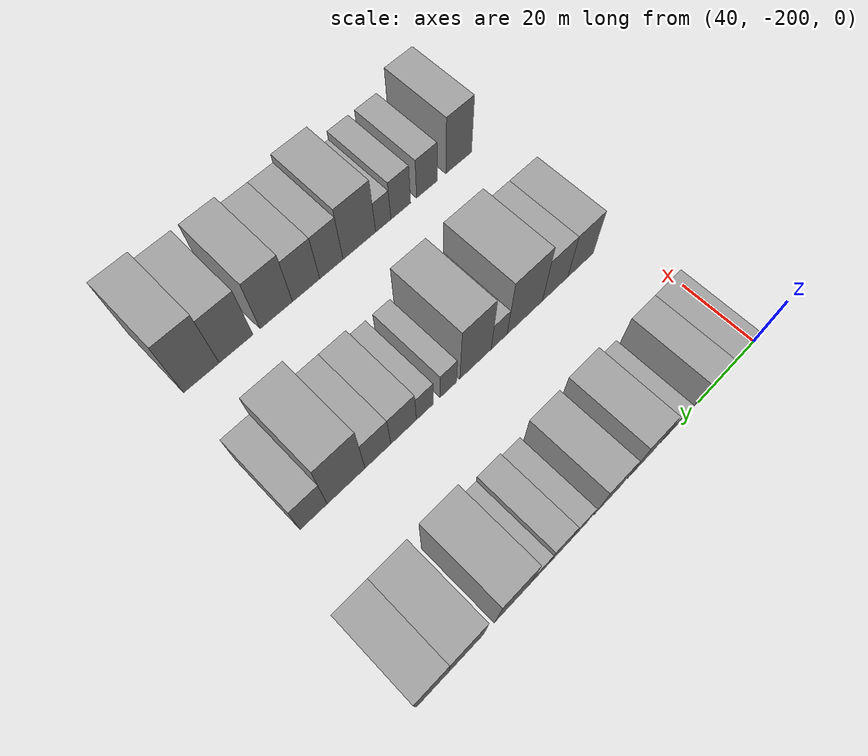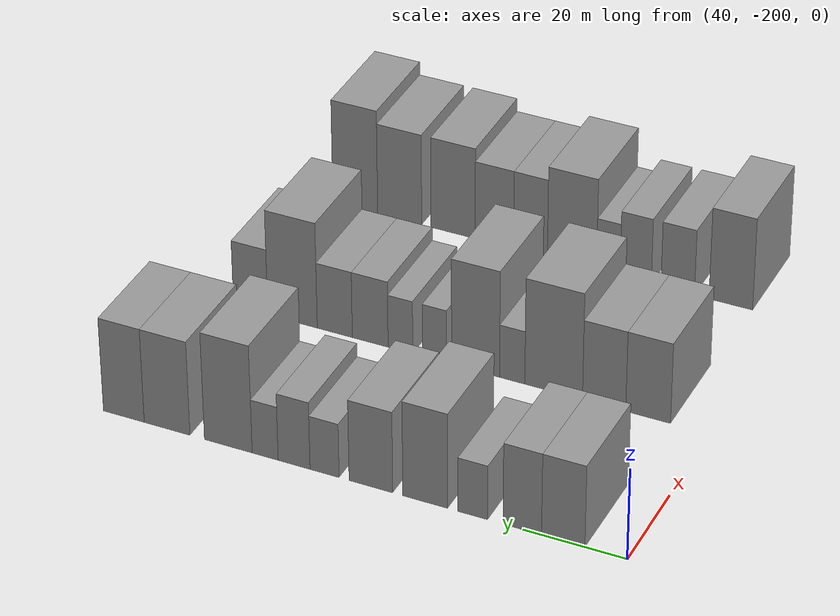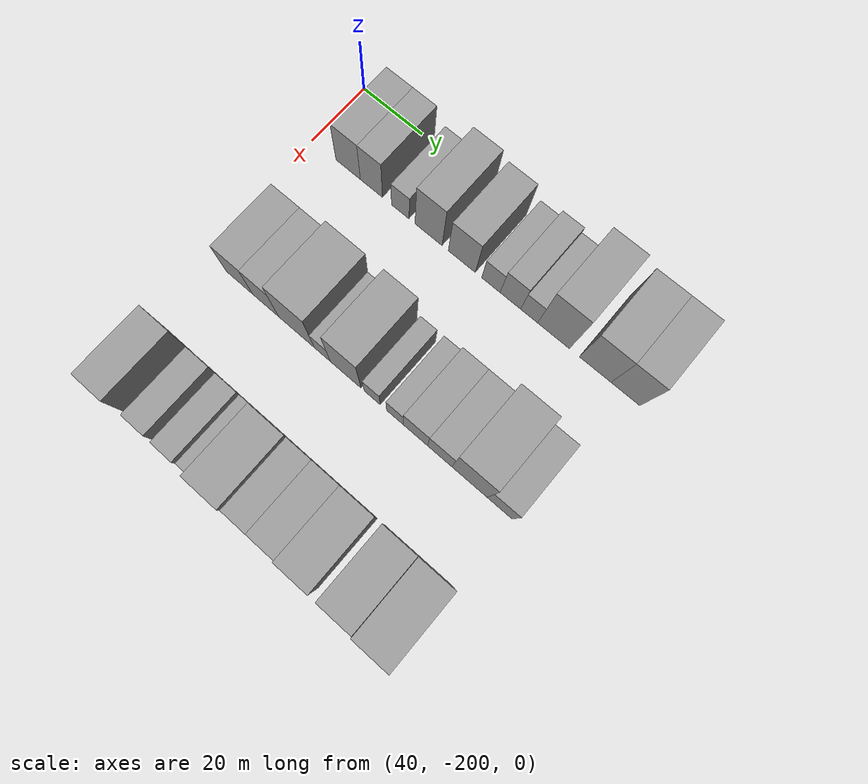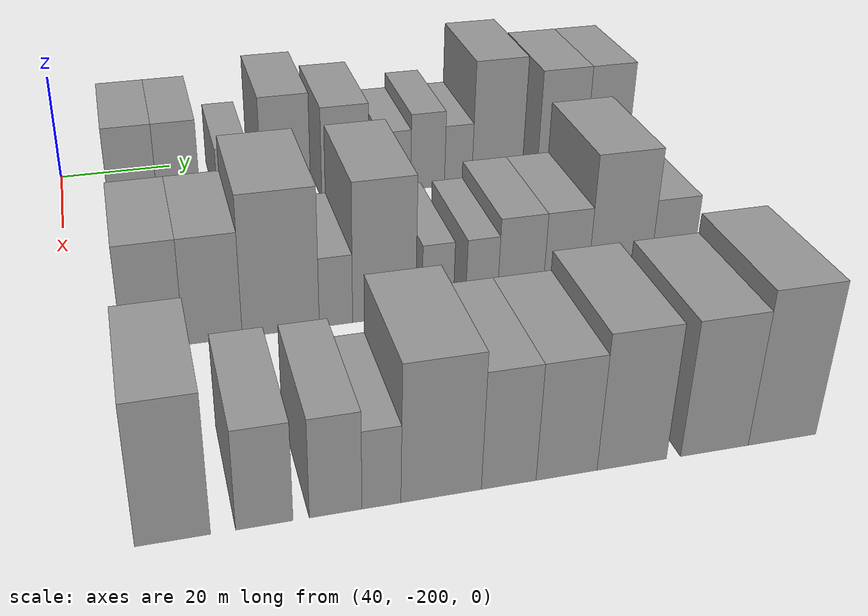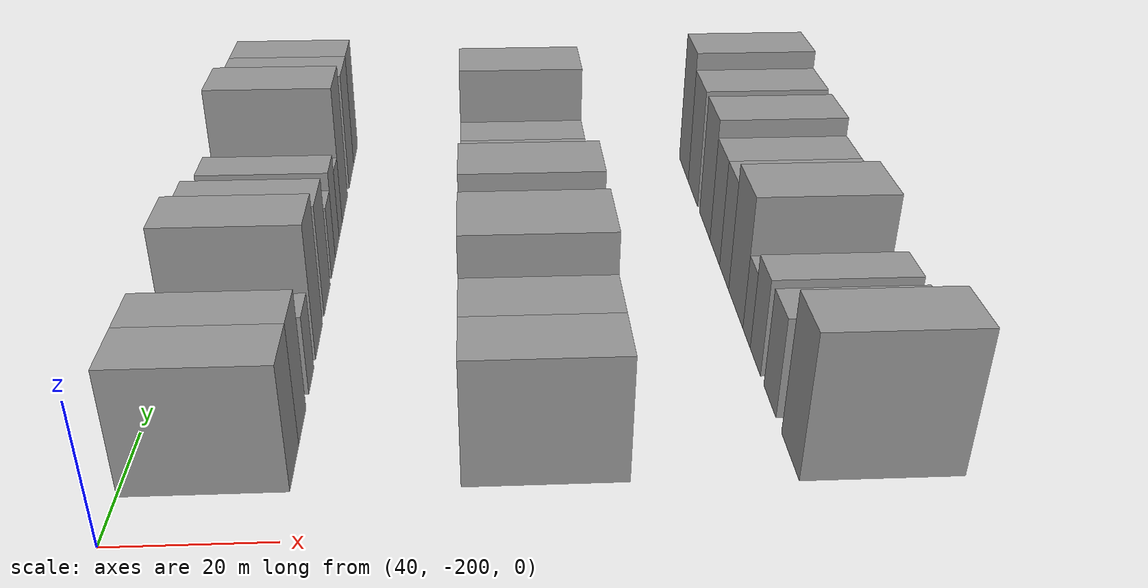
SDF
<sdf version="1.6">
 <world name="default">
  <model name="building_24">
   <static>1</static>
   <pose>50.0000 -187.6576 0 0.000000 0.000000 0.000000</pose>
   <link name="link">
    <pose>0 0 9.00 0 0 0</pose>
    <collision name="collision"><geometry><box><size>20.0000 8.3534 18.0000</size></box></geometry></collision>
    <visual name="visual">
     <cast_shadows>0</cast_shadows>
     <geometry><box><size>20.0000 8.3534 18.0000</size></box></geometry>
     <material>
      <script>
       <uri>model://grey_wall/materials/scripts</uri>
       <uri>model://grey_wall/materials/textures</uri>
       <name>vrc/grey_wall</name>
      </script>
     </material>
    </visual>
   </link>
  </model>
  <model name="building_25">
   <static>1</static>
   <pose>50.0000 -179.7481 0 0.000000 0.000000 0.000000</pose>
   <link name="link">
    <pose>0 0 9.00 0 0 0</pose>
    <collision name="collision"><geometry><box><size>20.0000 7.4656 18.0000</size></box></geometry></collision>
    <visual name="visual">
     <cast_shadows>0</cast_shadows>
     <geometry><box><size>20.0000 7.4656 18.0000</size></box></geometry>
     <material>
      <script>
       <uri>model://grey_wall/materials/scripts</uri>
       <uri>model://grey_wall/materials/textures</uri>
       <name>vrc/grey_wall</name>
      </script>
     </material>
    </visual>
   </link>
  </model>
  <model name="building_26">
   <static>1</static>
   <pose>50.0000 -170.0977 0 0.000000 0.000000 0.000000</pose>
   <link name="link">
    <pose>0 0 6.00 0 0 0</pose>
    <collision name="collision"><geometry><box><size>20.0000 5.8352 12.0000</size></box></geometry></collision>
    <visual name="visual">
     <cast_shadows>0</cast_shadows>
     <geometry><box><size>20.0000 5.8352 12.0000</size></box></geometry>
     <material>
      <script>
       <uri>model://grey_wall/materials/scripts</uri>
       <uri>model://grey_wall/materials/textures</uri>
       <name>vrc/grey_wall</name>
      </script>
     </material>
    </visual>
   </link>
  </model>
  <model name="building_27">
   <static>1</static>
   <pose>50.0000 -160.7447 0 0.000000 0.000000 0.000000</pose>
   <link name="link">
    <pose>0 0 10.50 0 0 0</pose>
    <collision name="collision"><geometry><box><size>20.0000 8.8708 21.0000</size></box></geometry></collision>
    <visual name="visual">
     <cast_shadows>0</cast_shadows>
     <geometry><box><size>20.0000 8.8708 21.0000</size></box></geometry>
     <material>
      <script>
       <uri>model://grey_wall/materials/scripts</uri>
       <uri>model://grey_wall/materials/textures</uri>
       <name>vrc/grey_wall</name>
      </script>
     </material>
    </visual>
   </link>
  </model>
  <model name="building_28">
   <static>1</static>
   <pose>50.0000 -149.9543 0 0.000000 0.000000 0.000000</pose>
   <link name="link">
    <pose>0 0 9.00 0 0 0</pose>
    <collision name="collision"><geometry><box><size>20.0000 8.7100 18.0000</size></box></geometry></collision>
    <visual name="visual">
     <cast_shadows>0</cast_shadows>
     <geometry><box><size>20.0000 8.7100 18.0000</size></box></geometry>
     <material>
      <script>
       <uri>model://grey_wall/materials/scripts</uri>
       <uri>model://grey_wall/materials/textures</uri>
       <name>vrc/grey_wall</name>
      </script>
     </material>
    </visual>
   </link>
  </model>
  <model name="building_29">
   <static>1</static>
   <pose>50.0000 -140.6729 0 0.000000 0.000000 0.000000</pose>
   <link name="link">
    <pose>0 0 6.00 0 0 0</pose>
    <collision name="collision"><geometry><box><size>20.0000 5.8529 12.0000</size></box></geometry></collision>
    <visual name="visual">
     <cast_shadows>0</cast_shadows>
     <geometry><box><size>20.0000 5.8529 12.0000</size></box></geometry>
     <material>
      <script>
       <uri>model://grey_wall/materials/scripts</uri>
       <uri>model://grey_wall/materials/textures</uri>
       <name>vrc/grey_wall</name>
      </script>
     </material>
    </visual>
   </link>
  </model>
  <model name="building_30">
   <static>1</static>
   <pose>50.0000 -134.5189 0 0.000000 0.000000 0.000000</pose>
   <link name="link">
    <pose>0 0 7.50 0 0 0</pose>
    <collision name="collision"><geometry><box><size>20.0000 6.4551 15.0000</size></box></geometry></collision>
    <visual name="visual">
     <cast_shadows>0</cast_shadows>
     <geometry><box><size>20.0000 6.4551 15.0000</size></box></geometry>
     <material>
      <script>
       <uri>model://grey_wall/materials/scripts</uri>
       <uri>model://grey_wall/materials/textures</uri>
       <name>vrc/grey_wall</name>
      </script>
     </material>
    </visual>
   </link>
  </model>
  <model name="building_31">
   <static>1</static>
   <pose>50.0000 -128.6459 0 0.000000 0.000000 0.000000</pose>
   <link name="link">
    <pose>0 0 6.00 0 0 0</pose>
    <collision name="collision"><geometry><box><size>20.0000 5.2908 12.0000</size></box></geometry></collision>
    <visual name="visual">
     <cast_shadows>0</cast_shadows>
     <geometry><box><size>20.0000 5.2908 12.0000</size></box></geometry>
     <material>
      <script>
       <uri>model://grey_wall/materials/scripts</uri>
       <uri>model://grey_wall/materials/textures</uri>
       <name>vrc/grey_wall</name>
      </script>
     </material>
    </visual>
   </link>
  </model>
  <model name="building_32">
   <static>1</static>
   <pose>50.0000 -121.1085 0 0.000000 0.000000 0.000000</pose>
   <link name="link">
    <pose>0 0 12.00 0 0 0</pose>
    <collision name="collision"><geometry><box><size>20.0000 9.7842 24.0000</size></box></geometry></collision>
    <visual name="visual">
     <cast_shadows>0</cast_shadows>
     <geometry><box><size>20.0000 9.7842 24.0000</size></box></geometry>
     <material>
      <script>
       <uri>model://grey_wall/materials/scripts</uri>
       <uri>model://grey_wall/materials/textures</uri>
       <name>vrc/grey_wall</name>
      </script>
     </material>
    </visual>
   </link>
  </model>
  <model name="building_33">
   <static>1</static>
   <pose>50.0000 -108.4735 0 0.000000 0.000000 0.000000</pose>
   <link name="link">
    <pose>0 0 10.50 0 0 0</pose>
    <collision name="collision"><geometry><box><size>20.0000 9.4856 21.0000</size></box></geometry></collision>
    <visual name="visual">
     <cast_shadows>0</cast_shadows>
     <geometry><box><size>20.0000 9.4856 21.0000</size></box></geometry>
     <material>
      <script>
       <uri>model://grey_wall/materials/scripts</uri>
       <uri>model://grey_wall/materials/textures</uri>
       <name>vrc/grey_wall</name>
      </script>
     </material>
    </visual>
   </link>
  </model>
  <model name="building_34">
   <static>1</static>
   <pose>50.0000 -99.4671 0 0.000000 0.000000 0.000000</pose>
   <link name="link">
    <pose>0 0 10.50 0 0 0</pose>
    <collision name="collision"><geometry><box><size>20.0000 8.5273 21.0000</size></box></geometry></collision>
    <visual name="visual">
     <cast_shadows>0</cast_shadows>
     <geometry><box><size>20.0000 8.5273 21.0000</size></box></geometry>
     <material>
      <script>
       <uri>model://grey_wall/materials/scripts</uri>
       <uri>model://grey_wall/materials/textures</uri>
       <name>vrc/grey_wall</name>
      </script>
     </material>
    </visual>
   </link>
  </model>
  <model name="building_110">
   <static>1</static>
   <pose>90.0000 -187.4447 0 0.000000 0.000000 0.000000</pose>
   <link name="link">
    <pose>0 0 9.00 0 0 0</pose>
    <collision name="collision"><geometry><box><size>20.0000 8.9232 18.0000</size></box></geometry></collision>
    <visual name="visual">
     <cast_shadows>0</cast_shadows>
     <geometry><box><size>20.0000 8.9232 18.0000</size></box></geometry>
     <material>
      <script>
       <uri>model://grey_wall/materials/scripts</uri>
       <uri>model://grey_wall/materials/textures</uri>
       <name>vrc/grey_wall</name>
      </script>
     </material>
    </visual>
   </link>
  </model>
  <model name="building_111">
   <static>1</static>
   <pose>90.0000 -178.6407 0 0.000000 0.000000 0.000000</pose>
   <link name="link">
    <pose>0 0 9.00 0 0 0</pose>
    <collision name="collision"><geometry><box><size>20.0000 8.6849 18.0000</size></box></geometry></collision>
    <visual name="visual">
     <cast_shadows>0</cast_shadows>
     <geometry><box><size>20.0000 8.6849 18.0000</size></box></geometry>
     <material>
      <script>
       <uri>model://grey_wall/materials/scripts</uri>
       <uri>model://grey_wall/materials/textures</uri>
       <name>vrc/grey_wall</name>
      </script>
     </material>
    </visual>
   </link>
  </model>
  <model name="building_112">
   <static>1</static>
   <pose>90.0000 -168.4499 0 0.000000 0.000000 0.000000</pose>
   <link name="link">
    <pose>0 0 12.00 0 0 0</pose>
    <collision name="collision"><geometry><box><size>20.0000 11.6965 24.0000</size></box></geometry></collision>
    <visual name="visual">
     <cast_shadows>0</cast_shadows>
     <geometry><box><size>20.0000 11.6965 24.0000</size></box></geometry>
     <material>
      <script>
       <uri>model://grey_wall/materials/scripts</uri>
       <uri>model://grey_wall/materials/textures</uri>
       <name>vrc/grey_wall</name>
      </script>
     </material>
    </visual>
   </link>
  </model>
  <model name="building_113">
   <static>1</static>
   <pose>90.0000 -160.0272 0 0.000000 0.000000 0.000000</pose>
   <link name="link">
    <pose>0 0 6.00 0 0 0</pose>
    <collision name="collision"><geometry><box><size>20.0000 5.1489 12.0000</size></box></geometry></collision>
    <visual name="visual">
     <cast_shadows>0</cast_shadows>
     <geometry><box><size>20.0000 5.1489 12.0000</size></box></geometry>
     <material>
      <script>
       <uri>model://grey_wall/materials/scripts</uri>
       <uri>model://grey_wall/materials/textures</uri>
       <name>vrc/grey_wall</name>
      </script>
     </material>
    </visual>
   </link>
  </model>
  <model name="building_114">
   <static>1</static>
   <pose>90.0000 -152.5129 0 0.000000 0.000000 0.000000</pose>
   <link name="link">
    <pose>0 0 12.00 0 0 0</pose>
    <collision name="collision"><geometry><box><size>20.0000 9.8797 24.0000</size></box></geometry></collision>
    <visual name="visual">
     <cast_shadows>0</cast_shadows>
     <geometry><box><size>20.0000 9.8797 24.0000</size></box></geometry>
     <material>
      <script>
       <uri>model://grey_wall/materials/scripts</uri>
       <uri>model://grey_wall/materials/textures</uri>
       <name>vrc/grey_wall</name>
      </script>
     </material>
    </visual>
   </link>
  </model>
  <model name="building_115">
   <static>1</static>
   <pose>90.0000 -144.0586 0 0.000000 0.000000 0.000000</pose>
   <link name="link">
    <pose>0 0 6.00 0 0 0</pose>
    <collision name="collision"><geometry><box><size>20.0000 5.0291 12.0000</size></box></geometry></collision>
    <visual name="visual">
     <cast_shadows>0</cast_shadows>
     <geometry><box><size>20.0000 5.0291 12.0000</size></box></geometry>
     <material>
      <script>
       <uri>model://grey_wall/materials/scripts</uri>
       <uri>model://grey_wall/materials/textures</uri>
       <name>vrc/grey_wall</name>
      </script>
     </material>
    </visual>
   </link>
  </model>
  <model name="building_116">
   <static>1</static>
   <pose>90.0000 -136.9716 0 0.000000 0.000000 0.000000</pose>
   <link name="link">
    <pose>0 0 6.00 0 0 0</pose>
    <collision name="collision"><geometry><box><size>20.0000 5.1449 12.0000</size></box></geometry></collision>
    <visual name="visual">
     <cast_shadows>0</cast_shadows>
     <geometry><box><size>20.0000 5.1449 12.0000</size></box></geometry>
     <material>
      <script>
       <uri>model://grey_wall/materials/scripts</uri>
       <uri>model://grey_wall/materials/textures</uri>
       <name>vrc/grey_wall</name>
      </script>
     </material>
    </visual>
   </link>
  </model>
  <model name="building_117">
   <static>1</static>
   <pose>90.0000 -130.6499 0 0.000000 0.000000 0.000000</pose>
   <link name="link">
    <pose>0 0 7.50 0 0 0</pose>
    <collision name="collision"><geometry><box><size>20.0000 7.4985 15.0000</size></box></geometry></collision>
    <visual name="visual">
     <cast_shadows>0</cast_shadows>
     <geometry><box><size>20.0000 7.4985 15.0000</size></box></geometry>
     <material>
      <script>
       <uri>model://grey_wall/materials/scripts</uri>
       <uri>model://grey_wall/materials/textures</uri>
       <name>vrc/grey_wall</name>
      </script>
     </material>
    </visual>
   </link>
  </model>
  <model name="building_118">
   <static>1</static>
   <pose>90.0000 -123.2020 0 0.000000 0.000000 0.000000</pose>
   <link name="link">
    <pose>0 0 7.50 0 0 0</pose>
    <collision name="collision"><geometry><box><size>20.0000 7.3974 15.0000</size></box></geometry></collision>
    <visual name="visual">
     <cast_shadows>0</cast_shadows>
     <geometry><box><size>20.0000 7.3974 15.0000</size></box></geometry>
     <material>
      <script>
       <uri>model://grey_wall/materials/scripts</uri>
       <uri>model://grey_wall/materials/textures</uri>
       <name>vrc/grey_wall</name>
      </script>
     </material>
    </visual>
   </link>
  </model>
  <model name="building_119">
   <static>1</static>
   <pose>90.0000 -114.2329 0 0.000000 0.000000 0.000000</pose>
   <link name="link">
    <pose>0 0 12.00 0 0 0</pose>
    <collision name="collision"><geometry><box><size>20.0000 10.5407 24.0000</size></box></geometry></collision>
    <visual name="visual">
     <cast_shadows>0</cast_shadows>
     <geometry><box><size>20.0000 10.5407 24.0000</size></box></geometry>
     <material>
      <script>
       <uri>model://grey_wall/materials/scripts</uri>
       <uri>model://grey_wall/materials/textures</uri>
       <name>vrc/grey_wall</name>
      </script>
     </material>
    </visual>
   </link>
  </model>
  <model name="building_120">
   <static>1</static>
   <pose>90.0000 -105.2889 0 0.000000 0.000000 0.000000</pose>
   <link name="link">
    <pose>0 0 7.50 0 0 0</pose>
    <collision name="collision"><geometry><box><size>20.0000 7.3475 15.0000</size></box></geometry></collision>
    <visual name="visual">
     <cast_shadows>0</cast_shadows>
     <geometry><box><size>20.0000 7.3475 15.0000</size></box></geometry>
     <material>
      <script>
       <uri>model://grey_wall/materials/scripts</uri>
       <uri>model://grey_wall/materials/textures</uri>
       <name>vrc/grey_wall</name>
      </script>
     </material>
    </visual>
   </link>
  </model>
  <model name="building_197">
   <static>1</static>
   <pose>130.0000 -188.1423 0 0.000000 0.000000 0.000000</pose>
   <link name="link">
    <pose>0 0 10.50 0 0 0</pose>
    <collision name="collision"><geometry><box><size>20.0000 8.9752 21.0000</size></box></geometry></collision>
    <visual name="visual">
     <cast_shadows>0</cast_shadows>
     <geometry><box><size>20.0000 8.9752 21.0000</size></box></geometry>
     <material>
      <script>
       <uri>model://grey_wall/materials/scripts</uri>
       <uri>model://grey_wall/materials/textures</uri>
       <name>vrc/grey_wall</name>
      </script>
     </material>
    </visual>
   </link>
  </model>
  <model name="building_198">
   <static>1</static>
   <pose>130.0000 -177.1646 0 0.000000 0.000000 0.000000</pose>
   <link name="link">
    <pose>0 0 7.50 0 0 0</pose>
    <collision name="collision"><geometry><box><size>20.0000 6.9802 15.0000</size></box></geometry></collision>
    <visual name="visual">
     <cast_shadows>0</cast_shadows>
     <geometry><box><size>20.0000 6.9802 15.0000</size></box></geometry>
     <material>
      <script>
       <uri>model://grey_wall/materials/scripts</uri>
       <uri>model://grey_wall/materials/textures</uri>
       <name>vrc/grey_wall</name>
      </script>
     </material>
    </visual>
   </link>
  </model>
  <model name="building_199">
   <static>1</static>
   <pose>130.0000 -168.4057 0 0.000000 0.000000 0.000000</pose>
   <link name="link">
    <pose>0 0 7.50 0 0 0</pose>
    <collision name="collision"><geometry><box><size>20.0000 6.5376 15.0000</size></box></geometry></collision>
    <visual name="visual">
     <cast_shadows>0</cast_shadows>
     <geometry><box><size>20.0000 6.5376 15.0000</size></box></geometry>
     <material>
      <script>
       <uri>model://grey_wall/materials/scripts</uri>
       <uri>model://grey_wall/materials/textures</uri>
       <name>vrc/grey_wall</name>
      </script>
     </material>
    </visual>
   </link>
  </model>
  <model name="building_200">
   <static>1</static>
   <pose>130.0000 -162.6642 0 0.000000 0.000000 0.000000</pose>
   <link name="link">
    <pose>0 0 6.00 0 0 0</pose>
    <collision name="collision"><geometry><box><size>20.0000 4.9455 12.0000</size></box></geometry></collision>
    <visual name="visual">
     <cast_shadows>0</cast_shadows>
     <geometry><box><size>20.0000 4.9455 12.0000</size></box></geometry>
     <material>
      <script>
       <uri>model://grey_wall/materials/scripts</uri>
       <uri>model://grey_wall/materials/textures</uri>
       <name>vrc/grey_wall</name>
      </script>
     </material>
    </visual>
   </link>
  </model>
  <model name="building_201">
   <static>1</static>
   <pose>130.0000 -154.9932 0 0.000000 0.000000 0.000000</pose>
   <link name="link">
    <pose>0 0 10.50 0 0 0</pose>
    <collision name="collision"><geometry><box><size>20.0000 10.3965 21.0000</size></box></geometry></collision>
    <visual name="visual">
     <cast_shadows>0</cast_shadows>
     <geometry><box><size>20.0000 10.3965 21.0000</size></box></geometry>
     <material>
      <script>
       <uri>model://grey_wall/materials/scripts</uri>
       <uri>model://grey_wall/materials/textures</uri>
       <name>vrc/grey_wall</name>
      </script>
     </material>
    </visual>
   </link>
  </model>
  <model name="building_202">
   <static>1</static>
   <pose>130.0000 -146.1828 0 0.000000 0.000000 0.000000</pose>
   <link name="link">
    <pose>0 0 9.00 0 0 0</pose>
    <collision name="collision"><geometry><box><size>20.0000 7.2243 18.0000</size></box></geometry></collision>
    <visual name="visual">
     <cast_shadows>0</cast_shadows>
     <geometry><box><size>20.0000 7.2243 18.0000</size></box></geometry>
     <material>
      <script>
       <uri>model://grey_wall/materials/scripts</uri>
       <uri>model://grey_wall/materials/textures</uri>
       <name>vrc/grey_wall</name>
      </script>
     </material>
    </visual>
   </link>
  </model>
  <model name="building_203">
   <static>1</static>
   <pose>130.0000 -138.4527 0 0.000000 0.000000 0.000000</pose>
   <link name="link">
    <pose>0 0 9.00 0 0 0</pose>
    <collision name="collision"><geometry><box><size>20.0000 8.2360 18.0000</size></box></geometry></collision>
    <visual name="visual">
     <cast_shadows>0</cast_shadows>
     <geometry><box><size>20.0000 8.2360 18.0000</size></box></geometry>
     <material>
      <script>
       <uri>model://grey_wall/materials/scripts</uri>
       <uri>model://grey_wall/materials/textures</uri>
       <name>vrc/grey_wall</name>
      </script>
     </material>
    </visual>
   </link>
  </model>
  <model name="building_204">
   <static>1</static>
   <pose>130.0000 -129.5408 0 0.000000 0.000000 0.000000</pose>
   <link name="link">
    <pose>0 0 10.50 0 0 0</pose>
    <collision name="collision"><geometry><box><size>20.0000 9.5878 21.0000</size></box></geometry></collision>
    <visual name="visual">
     <cast_shadows>0</cast_shadows>
     <geometry><box><size>20.0000 9.5878 21.0000</size></box></geometry>
     <material>
      <script>
       <uri>model://grey_wall/materials/scripts</uri>
       <uri>model://grey_wall/materials/textures</uri>
       <name>vrc/grey_wall</name>
      </script>
     </material>
    </visual>
   </link>
  </model>
  <model name="building_205">
   <static>1</static>
   <pose>130.0000 -117.9343 0 0.000000 0.000000 0.000000</pose>
   <link name="link">
    <pose>0 0 10.50 0 0 0</pose>
    <collision name="collision"><geometry><box><size>20.0000 9.6252 21.0000</size></box></geometry></collision>
    <visual name="visual">
     <cast_shadows>0</cast_shadows>
     <geometry><box><size>20.0000 9.6252 21.0000</size></box></geometry>
     <material>
      <script>
       <uri>model://grey_wall/materials/scripts</uri>
       <uri>model://grey_wall/materials/textures</uri>
       <name>vrc/grey_wall</name>
      </script>
     </material>
    </visual>
   </link>
  </model>
  <model name="building_206">
   <static>1</static>
   <pose>130.0000 -108.1946 0 0.000000 0.000000 0.000000</pose>
   <link name="link">
    <pose>0 0 12.00 0 0 0</pose>
    <collision name="collision"><geometry><box><size>20.0000 9.8543 24.0000</size></box></geometry></collision>
    <visual name="visual">
     <cast_shadows>0</cast_shadows>
     <geometry><box><size>20.0000 9.8543 24.0000</size></box></geometry>
     <material>
      <script>
       <uri>model://grey_wall/materials/scripts</uri>
       <uri>model://grey_wall/materials/textures</uri>
       <name>vrc/grey_wall</name>
      </script>
     </material>
    </visual>
   </link>
  </model>
 </world>
</sdf>
